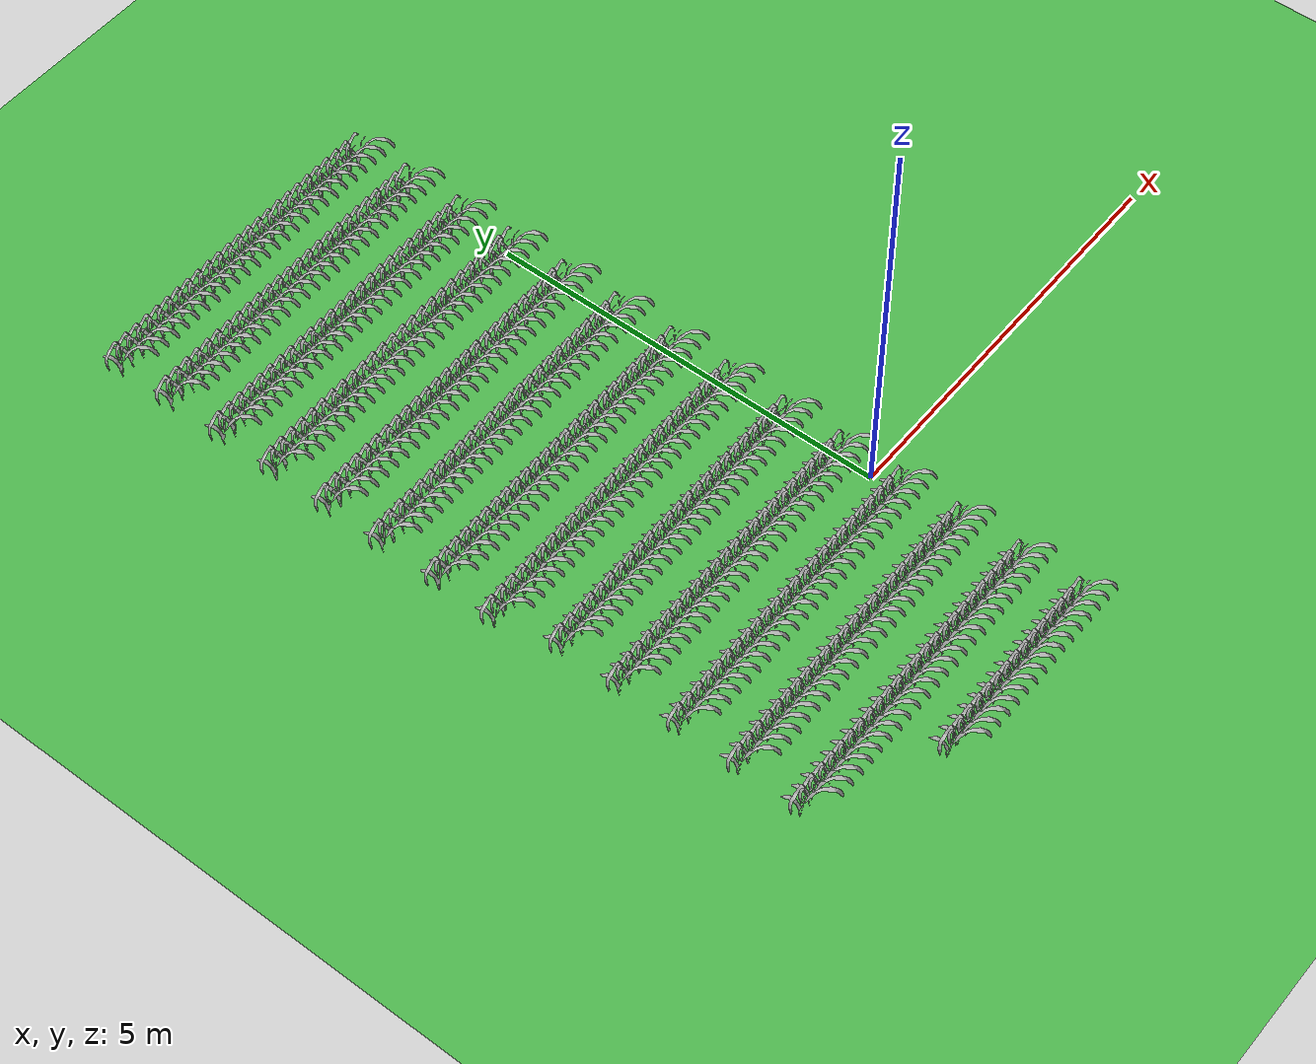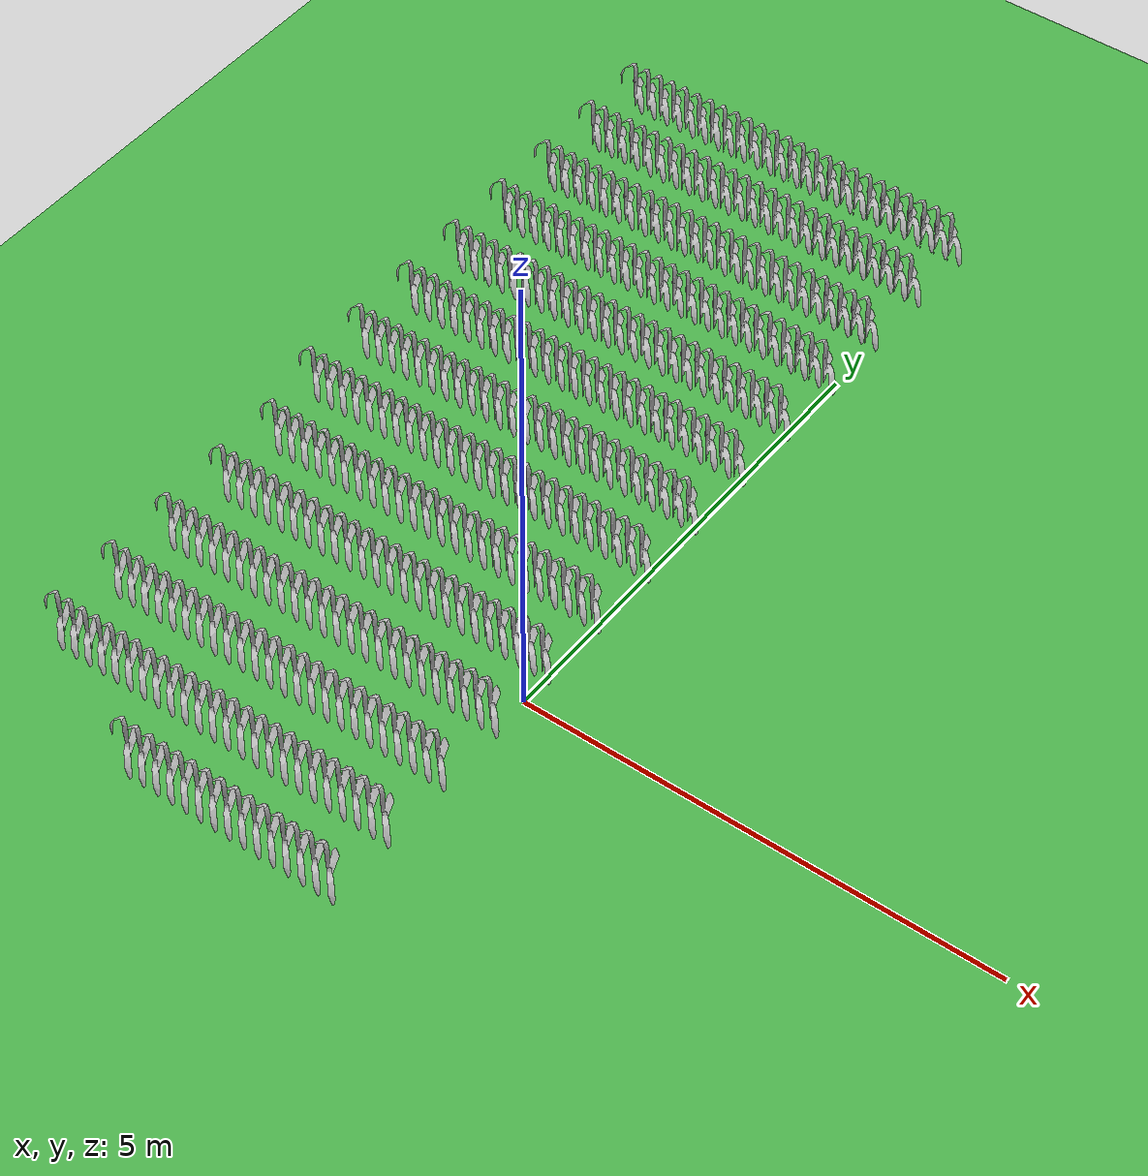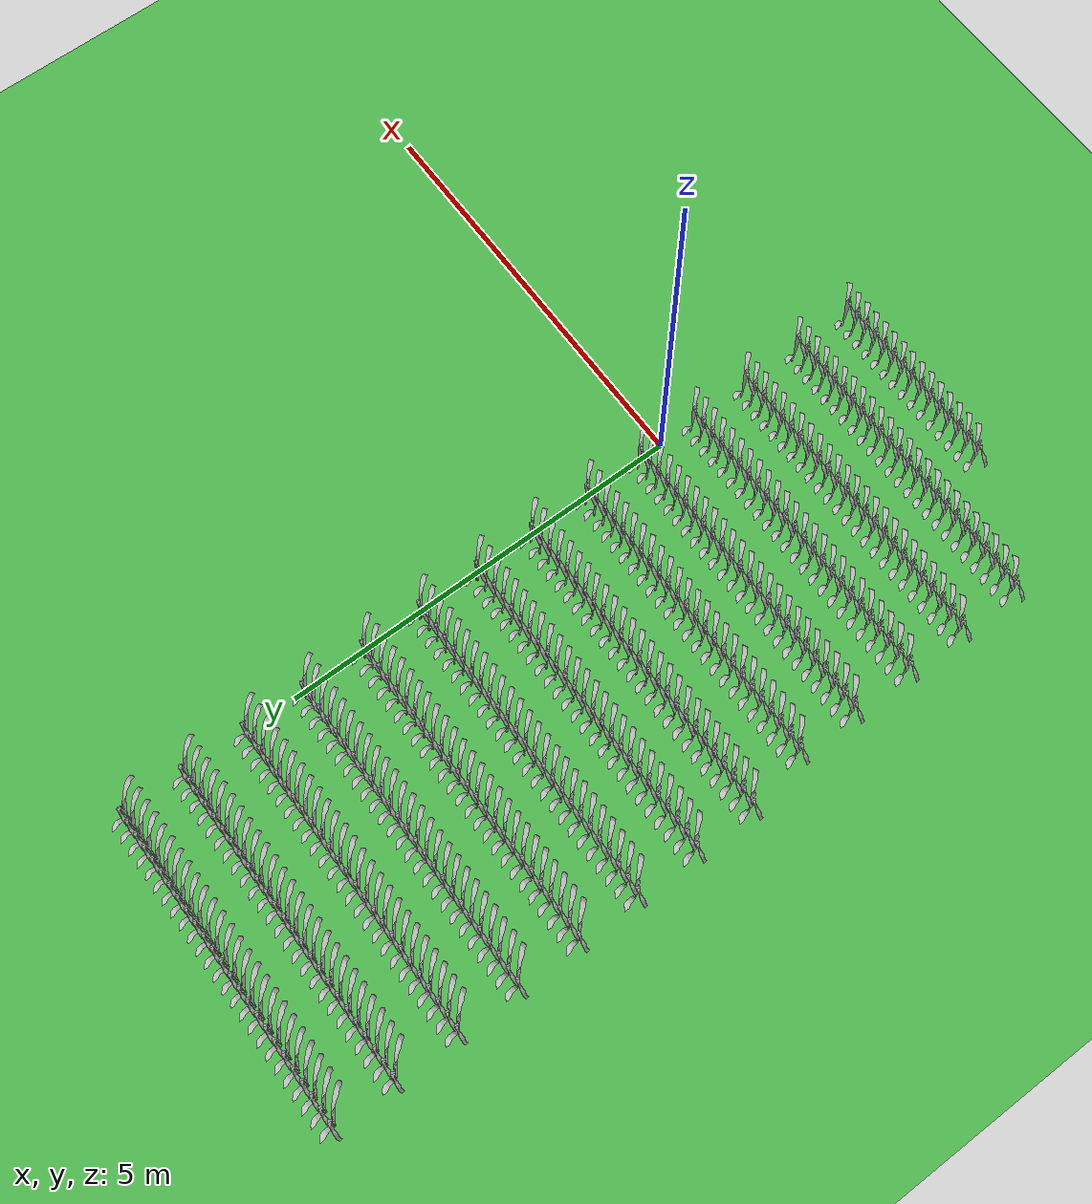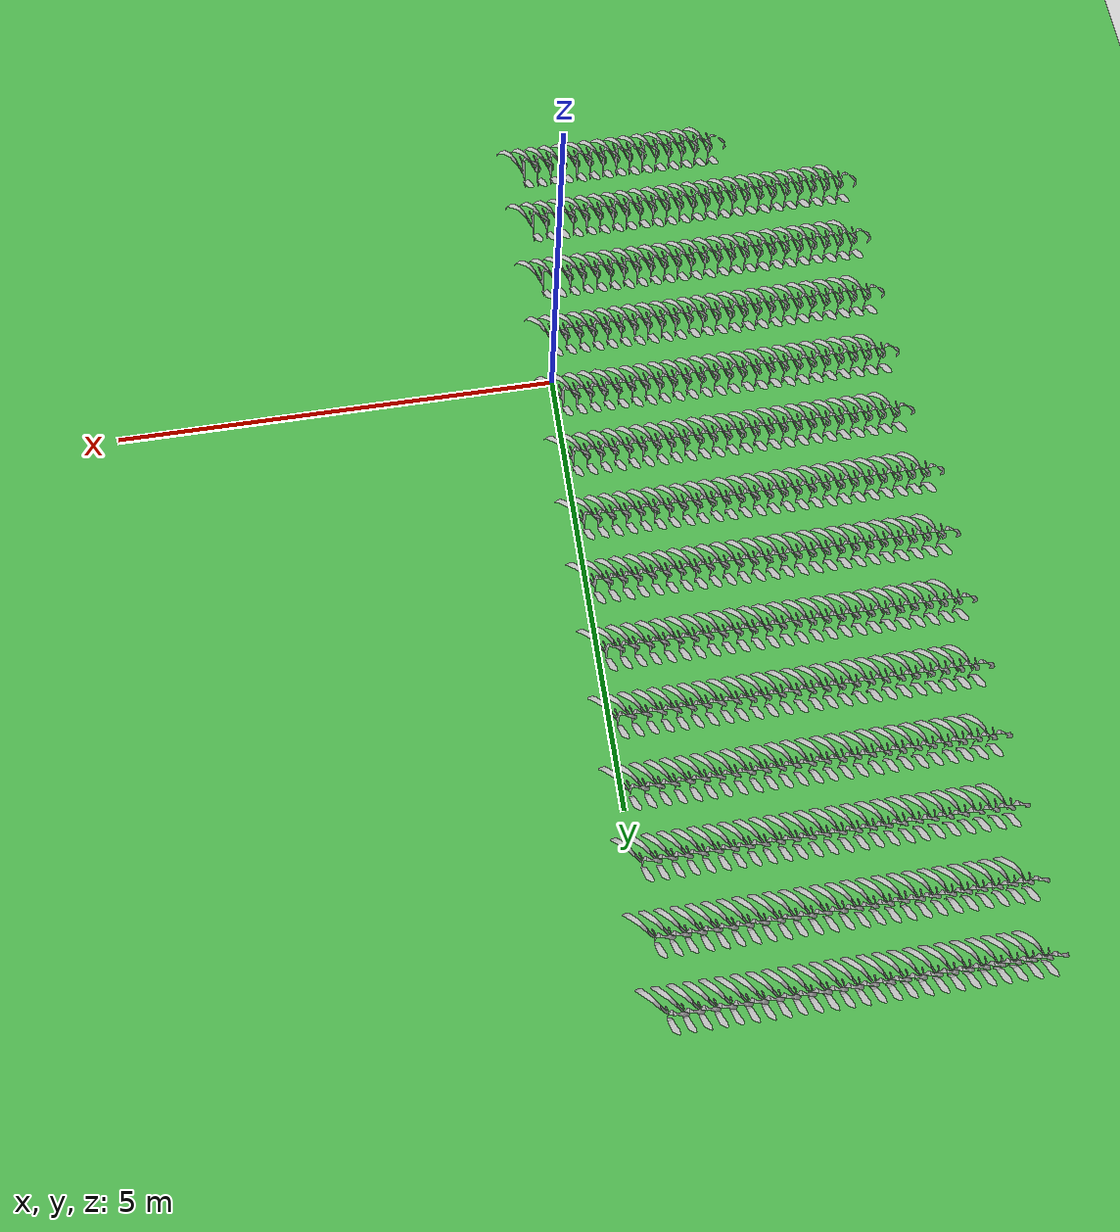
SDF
<sdf version="1.9">
 <world name="farm_world">
  <model name="ground_plane">
   <static>true</static>
   <link name="link">
    <collision name="collision">
     <geometry><plane><normal>0 0 1</normal><size>100 100</size></plane></geometry>
    </collision>
    <visual name="visual">
     <geometry><plane><normal>0 0 1</normal><size>100 100</size></plane></geometry>
     <material>
      <ambient>0.2 0.6 0.2 1</ambient>
      <diffuse>0.3 0.7 0.3 1</diffuse>
      <specular>0.1 0.1 0.1 1</specular>
     </material>
    </visual>
   </link>
  </model>
  <include><uri>model://maize_01</uri><name>maize_635</name><pose>-2.32 -2.62 0 0 0 0</pose></include>
  <include><uri>model://maize_01</uri><name>maize_636</name><pose>-2.16 -2.62 0 0 0 0</pose></include>
  <include><uri>model://maize_01</uri><name>maize_637</name><pose>-2.00 -2.62 0 0 0 0</pose></include>
  <include><uri>model://maize_01</uri><name>maize_638</name><pose>-1.84 -2.62 0 0 0 0</pose></include>
  <include><uri>model://maize_01</uri><name>maize_639</name><pose>-1.68 -2.62 0 0 0 0</pose></include>
  <include><uri>model://maize_01</uri><name>maize_640</name><pose>-1.52 -2.62 0 0 0 0</pose></include>
  <include><uri>model://maize_01</uri><name>maize_641</name><pose>-1.36 -2.62 0 0 0 0</pose></include>
  <include><uri>model://maize_01</uri><name>maize_642</name><pose>-1.20 -2.62 0 0 0 0</pose></include>
  <include><uri>model://maize_01</uri><name>maize_643</name><pose>-1.04 -2.62 0 0 0 0</pose></include>
  <include><uri>model://maize_01</uri><name>maize_644</name><pose>-0.88 -2.62 0 0 0 0</pose></include>
  <include><uri>model://maize_01</uri><name>maize_645</name><pose>-0.72 -2.62 0 0 0 0</pose></include>
  <include><uri>model://maize_01</uri><name>maize_646</name><pose>-0.56 -2.62 0 0 0 0</pose></include>
  <include><uri>model://maize_01</uri><name>maize_647</name><pose>-0.40 -2.62 0 0 0 0</pose></include>
  <include><uri>model://maize_01</uri><name>maize_648</name><pose>-0.24 -2.62 0 0 0 0</pose></include>
  <include><uri>model://maize_01</uri><name>maize_649</name><pose>-0.08 -2.62 0 0 0 0</pose></include>
  <include><uri>model://maize_01</uri><name>maize_726</name><pose>-3.76 -1.88 0 0 0 0</pose></include>
  <include><uri>model://maize_01</uri><name>maize_727</name><pose>-3.60 -1.88 0 0 0 0</pose></include>
  <include><uri>model://maize_01</uri><name>maize_728</name><pose>-3.44 -1.88 0 0 0 0</pose></include>
  <include><uri>model://maize_01</uri><name>maize_729</name><pose>-3.28 -1.88 0 0 0 0</pose></include>
  <include><uri>model://maize_01</uri><name>maize_730</name><pose>-3.12 -1.88 0 0 0 0</pose></include>
  <include><uri>model://maize_01</uri><name>maize_731</name><pose>-2.96 -1.88 0 0 0 0</pose></include>
  <include><uri>model://maize_01</uri><name>maize_732</name><pose>-2.80 -1.88 0 0 0 0</pose></include>
  <include><uri>model://maize_01</uri><name>maize_733</name><pose>-2.64 -1.88 0 0 0 0</pose></include>
  <include><uri>model://maize_01</uri><name>maize_734</name><pose>-2.48 -1.88 0 0 0 0</pose></include>
  <include><uri>model://maize_01</uri><name>maize_735</name><pose>-2.32 -1.88 0 0 0 0</pose></include>
  <include><uri>model://maize_01</uri><name>maize_736</name><pose>-2.16 -1.88 0 0 0 0</pose></include>
  <include><uri>model://maize_01</uri><name>maize_737</name><pose>-2.00 -1.88 0 0 0 0</pose></include>
  <include><uri>model://maize_01</uri><name>maize_738</name><pose>-1.84 -1.88 0 0 0 0</pose></include>
  <include><uri>model://maize_01</uri><name>maize_739</name><pose>-1.68 -1.88 0 0 0 0</pose></include>
  <include><uri>model://maize_01</uri><name>maize_740</name><pose>-1.52 -1.88 0 0 0 0</pose></include>
  <include><uri>model://maize_01</uri><name>maize_741</name><pose>-1.36 -1.88 0 0 0 0</pose></include>
  <include><uri>model://maize_01</uri><name>maize_742</name><pose>-1.20 -1.88 0 0 0 0</pose></include>
  <include><uri>model://maize_01</uri><name>maize_743</name><pose>-1.04 -1.88 0 0 0 0</pose></include>
  <include><uri>model://maize_01</uri><name>maize_744</name><pose>-0.88 -1.88 0 0 0 0</pose></include>
  <include><uri>model://maize_01</uri><name>maize_745</name><pose>-0.72 -1.88 0 0 0 0</pose></include>
  <include><uri>model://maize_01</uri><name>maize_746</name><pose>-0.56 -1.88 0 0 0 0</pose></include>
  <include><uri>model://maize_01</uri><name>maize_747</name><pose>-0.40 -1.88 0 0 0 0</pose></include>
  <include><uri>model://maize_01</uri><name>maize_748</name><pose>-0.24 -1.88 0 0 0 0</pose></include>
  <include><uri>model://maize_01</uri><name>maize_749</name><pose>-0.08 -1.88 0 0 0 0</pose></include>
  <include><uri>model://maize_01</uri><name>maize_826</name><pose>-3.76 -1.12 0 0 0 0</pose></include>
  <include><uri>model://maize_01</uri><name>maize_827</name><pose>-3.60 -1.12 0 0 0 0</pose></include>
  <include><uri>model://maize_01</uri><name>maize_828</name><pose>-3.44 -1.12 0 0 0 0</pose></include>
  <include><uri>model://maize_01</uri><name>maize_829</name><pose>-3.28 -1.12 0 0 0 0</pose></include>
  <include><uri>model://maize_01</uri><name>maize_830</name><pose>-3.12 -1.12 0 0 0 0</pose></include>
  <include><uri>model://maize_01</uri><name>maize_831</name><pose>-2.96 -1.12 0 0 0 0</pose></include>
  <include><uri>model://maize_01</uri><name>maize_832</name><pose>-2.80 -1.12 0 0 0 0</pose></include>
  <include><uri>model://maize_01</uri><name>maize_833</name><pose>-2.64 -1.12 0 0 0 0</pose></include>
  <include><uri>model://maize_01</uri><name>maize_834</name><pose>-2.48 -1.12 0 0 0 0</pose></include>
  <include><uri>model://maize_01</uri><name>maize_835</name><pose>-2.32 -1.12 0 0 0 0</pose></include>
  <include><uri>model://maize_01</uri><name>maize_836</name><pose>-2.16 -1.12 0 0 0 0</pose></include>
  <include><uri>model://maize_01</uri><name>maize_837</name><pose>-2.00 -1.12 0 0 0 0</pose></include>
  <include><uri>model://maize_01</uri><name>maize_838</name><pose>-1.84 -1.12 0 0 0 0</pose></include>
  <include><uri>model://maize_01</uri><name>maize_839</name><pose>-1.68 -1.12 0 0 0 0</pose></include>
  <include><uri>model://maize_01</uri><name>maize_840</name><pose>-1.52 -1.12 0 0 0 0</pose></include>
  <include><uri>model://maize_01</uri><name>maize_841</name><pose>-1.36 -1.12 0 0 0 0</pose></include>
  <include><uri>model://maize_01</uri><name>maize_842</name><pose>-1.20 -1.12 0 0 0 0</pose></include>
  <include><uri>model://maize_01</uri><name>maize_843</name><pose>-1.04 -1.12 0 0 0 0</pose></include>
  <include><uri>model://maize_01</uri><name>maize_844</name><pose>-0.88 -1.12 0 0 0 0</pose></include>
  <include><uri>model://maize_01</uri><name>maize_845</name><pose>-0.72 -1.12 0 0 0 0</pose></include>
  <include><uri>model://maize_01</uri><name>maize_846</name><pose>-0.56 -1.12 0 0 0 0</pose></include>
  <include><uri>model://maize_01</uri><name>maize_847</name><pose>-0.40 -1.12 0 0 0 0</pose></include>
  <include><uri>model://maize_01</uri><name>maize_848</name><pose>-0.24 -1.12 0 0 0 0</pose></include>
  <include><uri>model://maize_01</uri><name>maize_849</name><pose>-0.08 -1.12 0 0 0 0</pose></include>
  <include><uri>model://maize_01</uri><name>maize_926</name><pose>-3.76 -0.38 0 0 0 0</pose></include>
  <include><uri>model://maize_01</uri><name>maize_927</name><pose>-3.60 -0.38 0 0 0 0</pose></include>
  <include><uri>model://maize_01</uri><name>maize_928</name><pose>-3.44 -0.38 0 0 0 0</pose></include>
  <include><uri>model://maize_01</uri><name>maize_929</name><pose>-3.28 -0.38 0 0 0 0</pose></include>
  <include><uri>model://maize_01</uri><name>maize_930</name><pose>-3.12 -0.38 0 0 0 0</pose></include>
  <include><uri>model://maize_01</uri><name>maize_931</name><pose>-2.96 -0.38 0 0 0 0</pose></include>
  <include><uri>model://maize_01</uri><name>maize_932</name><pose>-2.80 -0.38 0 0 0 0</pose></include>
  <include><uri>model://maize_01</uri><name>maize_933</name><pose>-2.64 -0.38 0 0 0 0</pose></include>
  <include><uri>model://maize_01</uri><name>maize_934</name><pose>-2.48 -0.38 0 0 0 0</pose></include>
  <include><uri>model://maize_01</uri><name>maize_935</name><pose>-2.32 -0.38 0 0 0 0</pose></include>
  <include><uri>model://maize_01</uri><name>maize_936</name><pose>-2.16 -0.38 0 0 0 0</pose></include>
  <include><uri>model://maize_01</uri><name>maize_937</name><pose>-2.00 -0.38 0 0 0 0</pose></include>
  <include><uri>model://maize_01</uri><name>maize_938</name><pose>-1.84 -0.38 0 0 0 0</pose></include>
  <include><uri>model://maize_01</uri><name>maize_939</name><pose>-1.68 -0.38 0 0 0 0</pose></include>
  <include><uri>model://maize_01</uri><name>maize_940</name><pose>-1.52 -0.38 0 0 0 0</pose></include>
  <include><uri>model://maize_01</uri><name>maize_941</name><pose>-1.36 -0.38 0 0 0 0</pose></include>
  <include><uri>model://maize_01</uri><name>maize_942</name><pose>-1.20 -0.38 0 0 0 0</pose></include>
  <include><uri>model://maize_01</uri><name>maize_943</name><pose>-1.04 -0.38 0 0 0 0</pose></include>
  <include><uri>model://maize_01</uri><name>maize_944</name><pose>-0.88 -0.38 0 0 0 0</pose></include>
  <include><uri>model://maize_01</uri><name>maize_945</name><pose>-0.72 -0.38 0 0 0 0</pose></include>
  <include><uri>model://maize_01</uri><name>maize_946</name><pose>-0.56 -0.38 0 0 0 0</pose></include>
  <include><uri>model://maize_01</uri><name>maize_947</name><pose>-0.40 -0.38 0 0 0 0</pose></include>
  <include><uri>model://maize_01</uri><name>maize_948</name><pose>-0.24 -0.38 0 0 0 0</pose></include>
  <include><uri>model://maize_01</uri><name>maize_949</name><pose>-0.08 -0.38 0 0 0 0</pose></include>
  <include><uri>model://maize_01</uri><name>maize_1026</name><pose>-3.76 0.38 0 0 0 0</pose></include>
  <include><uri>model://maize_01</uri><name>maize_1027</name><pose>-3.60 0.38 0 0 0 0</pose></include>
  <include><uri>model://maize_01</uri><name>maize_1028</name><pose>-3.44 0.38 0 0 0 0</pose></include>
  <include><uri>model://maize_01</uri><name>maize_1029</name><pose>-3.28 0.38 0 0 0 0</pose></include>
  <include><uri>model://maize_01</uri><name>maize_1030</name><pose>-3.12 0.38 0 0 0 0</pose></include>
  <include><uri>model://maize_01</uri><name>maize_1031</name><pose>-2.96 0.38 0 0 0 0</pose></include>
  <include><uri>model://maize_01</uri><name>maize_1032</name><pose>-2.80 0.38 0 0 0 0</pose></include>
  <include><uri>model://maize_01</uri><name>maize_1033</name><pose>-2.64 0.38 0 0 0 0</pose></include>
  <include><uri>model://maize_01</uri><name>maize_1034</name><pose>-2.48 0.38 0 0 0 0</pose></include>
  <include><uri>model://maize_01</uri><name>maize_1035</name><pose>-2.32 0.38 0 0 0 0</pose></include>
  <include><uri>model://maize_01</uri><name>maize_1036</name><pose>-2.16 0.38 0 0 0 0</pose></include>
  <include><uri>model://maize_01</uri><name>maize_1037</name><pose>-2.00 0.38 0 0 0 0</pose></include>
  <include><uri>model://maize_01</uri><name>maize_1038</name><pose>-1.84 0.38 0 0 0 0</pose></include>
  <include><uri>model://maize_01</uri><name>maize_1039</name><pose>-1.68 0.38 0 0 0 0</pose></include>
  <include><uri>model://maize_01</uri><name>maize_1040</name><pose>-1.52 0.38 0 0 0 0</pose></include>
  <include><uri>model://maize_01</uri><name>maize_1041</name><pose>-1.36 0.38 0 0 0 0</pose></include>
  <include><uri>model://maize_01</uri><name>maize_1042</name><pose>-1.20 0.38 0 0 0 0</pose></include>
  <include><uri>model://maize_01</uri><name>maize_1043</name><pose>-1.04 0.38 0 0 0 0</pose></include>
  <include><uri>model://maize_01</uri><name>maize_1044</name><pose>-0.88 0.38 0 0 0 0</pose></include>
  <include><uri>model://maize_01</uri><name>maize_1045</name><pose>-0.72 0.38 0 0 0 0</pose></include>
  <include><uri>model://maize_01</uri><name>maize_1046</name><pose>-0.56 0.38 0 0 0 0</pose></include>
  <include><uri>model://maize_01</uri><name>maize_1047</name><pose>-0.40 0.38 0 0 0 0</pose></include>
  <include><uri>model://maize_01</uri><name>maize_1048</name><pose>-0.24 0.38 0 0 0 0</pose></include>
  <include><uri>model://maize_01</uri><name>maize_1049</name><pose>-0.08 0.38 0 0 0 0</pose></include>
  <include><uri>model://maize_01</uri><name>maize_1126</name><pose>-3.76 1.12 0 0 0 0</pose></include>
  <include><uri>model://maize_01</uri><name>maize_1127</name><pose>-3.60 1.12 0 0 0 0</pose></include>
  <include><uri>model://maize_01</uri><name>maize_1128</name><pose>-3.44 1.12 0 0 0 0</pose></include>
  <include><uri>model://maize_01</uri><name>maize_1129</name><pose>-3.28 1.12 0 0 0 0</pose></include>
  <include><uri>model://maize_01</uri><name>maize_1130</name><pose>-3.12 1.12 0 0 0 0</pose></include>
  <include><uri>model://maize_01</uri><name>maize_1131</name><pose>-2.96 1.12 0 0 0 0</pose></include>
  <include><uri>model://maize_01</uri><name>maize_1132</name><pose>-2.80 1.12 0 0 0 0</pose></include>
  <include><uri>model://maize_01</uri><name>maize_1133</name><pose>-2.64 1.12 0 0 0 0</pose></include>
  <include><uri>model://maize_01</uri><name>maize_1134</name><pose>-2.48 1.12 0 0 0 0</pose></include>
  <include><uri>model://maize_01</uri><name>maize_1135</name><pose>-2.32 1.12 0 0 0 0</pose></include>
  <include><uri>model://maize_01</uri><name>maize_1136</name><pose>-2.16 1.12 0 0 0 0</pose></include>
  <include><uri>model://maize_01</uri><name>maize_1137</name><pose>-2.00 1.12 0 0 0 0</pose></include>
  <include><uri>model://maize_01</uri><name>maize_1138</name><pose>-1.84 1.12 0 0 0 0</pose></include>
  <include><uri>model://maize_01</uri><name>maize_1139</name><pose>-1.68 1.12 0 0 0 0</pose></include>
  <include><uri>model://maize_01</uri><name>maize_1140</name><pose>-1.52 1.12 0 0 0 0</pose></include>
  <include><uri>model://maize_01</uri><name>maize_1141</name><pose>-1.36 1.12 0 0 0 0</pose></include>
  <include><uri>model://maize_01</uri><name>maize_1142</name><pose>-1.20 1.12 0 0 0 0</pose></include>
  <include><uri>model://maize_01</uri><name>maize_1143</name><pose>-1.04 1.12 0 0 0 0</pose></include>
  <include><uri>model://maize_01</uri><name>maize_1144</name><pose>-0.88 1.12 0 0 0 0</pose></include>
  <include><uri>model://maize_01</uri><name>maize_1145</name><pose>-0.72 1.12 0 0 0 0</pose></include>
  <include><uri>model://maize_01</uri><name>maize_1146</name><pose>-0.56 1.12 0 0 0 0</pose></include>
  <include><uri>model://maize_01</uri><name>maize_1147</name><pose>-0.40 1.12 0 0 0 0</pose></include>
  <include><uri>model://maize_01</uri><name>maize_1148</name><pose>-0.24 1.12 0 0 0 0</pose></include>
  <include><uri>model://maize_01</uri><name>maize_1149</name><pose>-0.08 1.12 0 0 0 0</pose></include>
  <include><uri>model://maize_01</uri><name>maize_1225</name><pose>-3.92 1.88 0 0 0 0</pose></include>
  <include><uri>model://maize_01</uri><name>maize_1226</name><pose>-3.76 1.88 0 0 0 0</pose></include>
  <include><uri>model://maize_01</uri><name>maize_1227</name><pose>-3.60 1.88 0 0 0 0</pose></include>
  <include><uri>model://maize_01</uri><name>maize_1228</name><pose>-3.44 1.88 0 0 0 0</pose></include>
  <include><uri>model://maize_01</uri><name>maize_1229</name><pose>-3.28 1.88 0 0 0 0</pose></include>
  <include><uri>model://maize_01</uri><name>maize_1230</name><pose>-3.12 1.88 0 0 0 0</pose></include>
  <include><uri>model://maize_01</uri><name>maize_1231</name><pose>-2.96 1.88 0 0 0 0</pose></include>
  <include><uri>model://maize_01</uri><name>maize_1232</name><pose>-2.80 1.88 0 0 0 0</pose></include>
  <include><uri>model://maize_01</uri><name>maize_1233</name><pose>-2.64 1.88 0 0 0 0</pose></include>
  <include><uri>model://maize_01</uri><name>maize_1234</name><pose>-2.48 1.88 0 0 0 0</pose></include>
  <include><uri>model://maize_01</uri><name>maize_1235</name><pose>-2.32 1.88 0 0 0 0</pose></include>
  <include><uri>model://maize_01</uri><name>maize_1236</name><pose>-2.16 1.88 0 0 0 0</pose></include>
  <include><uri>model://maize_01</uri><name>maize_1237</name><pose>-2.00 1.88 0 0 0 0</pose></include>
  <include><uri>model://maize_01</uri><name>maize_1238</name><pose>-1.84 1.88 0 0 0 0</pose></include>
  <include><uri>model://maize_01</uri><name>maize_1239</name><pose>-1.68 1.88 0 0 0 0</pose></include>
  <include><uri>model://maize_01</uri><name>maize_1240</name><pose>-1.52 1.88 0 0 0 0</pose></include>
  <include><uri>model://maize_01</uri><name>maize_1241</name><pose>-1.36 1.88 0 0 0 0</pose></include>
  <include><uri>model://maize_01</uri><name>maize_1242</name><pose>-1.20 1.88 0 0 0 0</pose></include>
  <include><uri>model://maize_01</uri><name>maize_1243</name><pose>-1.04 1.88 0 0 0 0</pose></include>
  <include><uri>model://maize_01</uri><name>maize_1244</name><pose>-0.88 1.88 0 0 0 0</pose></include>
  <include><uri>model://maize_01</uri><name>maize_1245</name><pose>-0.72 1.88 0 0 0 0</pose></include>
  <include><uri>model://maize_01</uri><name>maize_1246</name><pose>-0.56 1.88 0 0 0 0</pose></include>
  <include><uri>model://maize_01</uri><name>maize_1247</name><pose>-0.40 1.88 0 0 0 0</pose></include>
  <include><uri>model://maize_01</uri><name>maize_1248</name><pose>-0.24 1.88 0 0 0 0</pose></include>
  <include><uri>model://maize_01</uri><name>maize_1249</name><pose>-0.08 1.88 0 0 0 0</pose></include>
  <include><uri>model://maize_01</uri><name>maize_1325</name><pose>-3.92 2.62 0 0 0 0</pose></include>
  <include><uri>model://maize_01</uri><name>maize_1326</name><pose>-3.76 2.62 0 0 0 0</pose></include>
  <include><uri>model://maize_01</uri><name>maize_1327</name><pose>-3.60 2.62 0 0 0 0</pose></include>
  <include><uri>model://maize_01</uri><name>maize_1328</name><pose>-3.44 2.62 0 0 0 0</pose></include>
  <include><uri>model://maize_01</uri><name>maize_1329</name><pose>-3.28 2.62 0 0 0 0</pose></include>
  <include><uri>model://maize_01</uri><name>maize_1330</name><pose>-3.12 2.62 0 0 0 0</pose></include>
  <include><uri>model://maize_01</uri><name>maize_1331</name><pose>-2.96 2.62 0 0 0 0</pose></include>
  <include><uri>model://maize_01</uri><name>maize_1332</name><pose>-2.80 2.62 0 0 0 0</pose></include>
  <include><uri>model://maize_01</uri><name>maize_1333</name><pose>-2.64 2.62 0 0 0 0</pose></include>
  <include><uri>model://maize_01</uri><name>maize_1334</name><pose>-2.48 2.62 0 0 0 0</pose></include>
  <include><uri>model://maize_01</uri><name>maize_1335</name><pose>-2.32 2.62 0 0 0 0</pose></include>
  <include><uri>model://maize_01</uri><name>maize_1336</name><pose>-2.16 2.62 0 0 0 0</pose></include>
  <include><uri>model://maize_01</uri><name>maize_1337</name><pose>-2.00 2.62 0 0 0 0</pose></include>
  <include><uri>model://maize_01</uri><name>maize_1338</name><pose>-1.84 2.62 0 0 0 0</pose></include>
  <include><uri>model://maize_01</uri><name>maize_1339</name><pose>-1.68 2.62 0 0 0 0</pose></include>
  <include><uri>model://maize_01</uri><name>maize_1340</name><pose>-1.52 2.62 0 0 0 0</pose></include>
  <include><uri>model://maize_01</uri><name>maize_1341</name><pose>-1.36 2.62 0 0 0 0</pose></include>
  <include><uri>model://maize_01</uri><name>maize_1342</name><pose>-1.20 2.62 0 0 0 0</pose></include>
  <include><uri>model://maize_01</uri><name>maize_1343</name><pose>-1.04 2.62 0 0 0 0</pose></include>
  <include><uri>model://maize_01</uri><name>maize_1344</name><pose>-0.88 2.62 0 0 0 0</pose></include>
  <include><uri>model://maize_01</uri><name>maize_1345</name><pose>-0.72 2.62 0 0 0 0</pose></include>
  <include><uri>model://maize_01</uri><name>maize_1346</name><pose>-0.56 2.62 0 0 0 0</pose></include>
  <include><uri>model://maize_01</uri><name>maize_1347</name><pose>-0.40 2.62 0 0 0 0</pose></include>
  <include><uri>model://maize_01</uri><name>maize_1348</name><pose>-0.24 2.62 0 0 0 0</pose></include>
  <include><uri>model://maize_01</uri><name>maize_1349</name><pose>-0.08 2.62 0 0 0 0</pose></include>
  <include><uri>model://maize_01</uri><name>maize_1425</name><pose>-3.92 3.38 0 0 0 0</pose></include>
  <include><uri>model://maize_01</uri><name>maize_1426</name><pose>-3.76 3.38 0 0 0 0</pose></include>
  <include><uri>model://maize_01</uri><name>maize_1427</name><pose>-3.60 3.38 0 0 0 0</pose></include>
  <include><uri>model://maize_01</uri><name>maize_1428</name><pose>-3.44 3.38 0 0 0 0</pose></include>
  <include><uri>model://maize_01</uri><name>maize_1429</name><pose>-3.28 3.38 0 0 0 0</pose></include>
  <include><uri>model://maize_01</uri><name>maize_1430</name><pose>-3.12 3.38 0 0 0 0</pose></include>
  <include><uri>model://maize_01</uri><name>maize_1431</name><pose>-2.96 3.38 0 0 0 0</pose></include>
  <include><uri>model://maize_01</uri><name>maize_1432</name><pose>-2.80 3.38 0 0 0 0</pose></include>
  <include><uri>model://maize_01</uri><name>maize_1433</name><pose>-2.64 3.38 0 0 0 0</pose></include>
  <include><uri>model://maize_01</uri><name>maize_1434</name><pose>-2.48 3.38 0 0 0 0</pose></include>
  <include><uri>model://maize_01</uri><name>maize_1435</name><pose>-2.32 3.38 0 0 0 0</pose></include>
  <include><uri>model://maize_01</uri><name>maize_1436</name><pose>-2.16 3.38 0 0 0 0</pose></include>
  <include><uri>model://maize_01</uri><name>maize_1437</name><pose>-2.00 3.38 0 0 0 0</pose></include>
  <include><uri>model://maize_01</uri><name>maize_1438</name><pose>-1.84 3.38 0 0 0 0</pose></include>
  <include><uri>model://maize_01</uri><name>maize_1439</name><pose>-1.68 3.38 0 0 0 0</pose></include>
  <include><uri>model://maize_01</uri><name>maize_1440</name><pose>-1.52 3.38 0 0 0 0</pose></include>
  <include><uri>model://maize_01</uri><name>maize_1441</name><pose>-1.36 3.38 0 0 0 0</pose></include>
  <include><uri>model://maize_01</uri><name>maize_1442</name><pose>-1.20 3.38 0 0 0 0</pose></include>
  <include><uri>model://maize_01</uri><name>maize_1443</name><pose>-1.04 3.38 0 0 0 0</pose></include>
  <include><uri>model://maize_01</uri><name>maize_1444</name><pose>-0.88 3.38 0 0 0 0</pose></include>
  <include><uri>model://maize_01</uri><name>maize_1445</name><pose>-0.72 3.38 0 0 0 0</pose></include>
  <include><uri>model://maize_01</uri><name>maize_1446</name><pose>-0.56 3.38 0 0 0 0</pose></include>
  <include><uri>model://maize_01</uri><name>maize_1447</name><pose>-0.40 3.38 0 0 0 0</pose></include>
  <include><uri>model://maize_01</uri><name>maize_1448</name><pose>-0.24 3.38 0 0 0 0</pose></include>
  <include><uri>model://maize_01</uri><name>maize_1449</name><pose>-0.08 3.38 0 0 0 0</pose></include>
  <include><uri>model://maize_01</uri><name>maize_1525</name><pose>-3.92 4.12 0 0 0 0</pose></include>
  <include><uri>model://maize_01</uri><name>maize_1526</name><pose>-3.76 4.12 0 0 0 0</pose></include>
  <include><uri>model://maize_01</uri><name>maize_1527</name><pose>-3.60 4.12 0 0 0 0</pose></include>
  <include><uri>model://maize_01</uri><name>maize_1528</name><pose>-3.44 4.12 0 0 0 0</pose></include>
  <include><uri>model://maize_01</uri><name>maize_1529</name><pose>-3.28 4.12 0 0 0 0</pose></include>
  <include><uri>model://maize_01</uri><name>maize_1530</name><pose>-3.12 4.12 0 0 0 0</pose></include>
  <include><uri>model://maize_01</uri><name>maize_1531</name><pose>-2.96 4.12 0 0 0 0</pose></include>
  <include><uri>model://maize_01</uri><name>maize_1532</name><pose>-2.80 4.12 0 0 0 0</pose></include>
  <include><uri>model://maize_01</uri><name>maize_1533</name><pose>-2.64 4.12 0 0 0 0</pose></include>
  <include><uri>model://maize_01</uri><name>maize_1534</name><pose>-2.48 4.12 0 0 0 0</pose></include>
  <include><uri>model://maize_01</uri><name>maize_1535</name><pose>-2.32 4.12 0 0 0 0</pose></include>
  <include><uri>model://maize_01</uri><name>maize_1536</name><pose>-2.16 4.12 0 0 0 0</pose></include>
  <include><uri>model://maize_01</uri><name>maize_1537</name><pose>-2.00 4.12 0 0 0 0</pose></include>
  <include><uri>model://maize_01</uri><name>maize_1538</name><pose>-1.84 4.12 0 0 0 0</pose></include>
  <include><uri>model://maize_01</uri><name>maize_1539</name><pose>-1.68 4.12 0 0 0 0</pose></include>
  <include><uri>model://maize_01</uri><name>maize_1540</name><pose>-1.52 4.12 0 0 0 0</pose></include>
  <include><uri>model://maize_01</uri><name>maize_1541</name><pose>-1.36 4.12 0 0 0 0</pose></include>
  <include><uri>model://maize_01</uri><name>maize_1542</name><pose>-1.20 4.12 0 0 0 0</pose></include>
  <include><uri>model://maize_01</uri><name>maize_1543</name><pose>-1.04 4.12 0 0 0 0</pose></include>
  <include><uri>model://maize_01</uri><name>maize_1544</name><pose>-0.88 4.12 0 0 0 0</pose></include>
  <include><uri>model://maize_01</uri><name>maize_1545</name><pose>-0.72 4.12 0 0 0 0</pose></include>
  <include><uri>model://maize_01</uri><name>maize_1546</name><pose>-0.56 4.12 0 0 0 0</pose></include>
  <include><uri>model://maize_01</uri><name>maize_1547</name><pose>-0.40 4.12 0 0 0 0</pose></include>
  <include><uri>model://maize_01</uri><name>maize_1548</name><pose>-0.24 4.12 0 0 0 0</pose></include>
  <include><uri>model://maize_01</uri><name>maize_1549</name><pose>-0.08 4.12 0 0 0 0</pose></include>
  <include><uri>model://maize_01</uri><name>maize_1625</name><pose>-3.92 4.88 0 0 0 0</pose></include>
  <include><uri>model://maize_01</uri><name>maize_1626</name><pose>-3.76 4.88 0 0 0 0</pose></include>
  <include><uri>model://maize_01</uri><name>maize_1627</name><pose>-3.60 4.88 0 0 0 0</pose></include>
  <include><uri>model://maize_01</uri><name>maize_1628</name><pose>-3.44 4.88 0 0 0 0</pose></include>
  <include><uri>model://maize_01</uri><name>maize_1629</name><pose>-3.28 4.88 0 0 0 0</pose></include>
  <include><uri>model://maize_01</uri><name>maize_1630</name><pose>-3.12 4.88 0 0 0 0</pose></include>
  <include><uri>model://maize_01</uri><name>maize_1631</name><pose>-2.96 4.88 0 0 0 0</pose></include>
  <include><uri>model://maize_01</uri><name>maize_1632</name><pose>-2.80 4.88 0 0 0 0</pose></include>
  <include><uri>model://maize_01</uri><name>maize_1633</name><pose>-2.64 4.88 0 0 0 0</pose></include>
  <include><uri>model://maize_01</uri><name>maize_1634</name><pose>-2.48 4.88 0 0 0 0</pose></include>
  <include><uri>model://maize_01</uri><name>maize_1635</name><pose>-2.32 4.88 0 0 0 0</pose></include>
  <include><uri>model://maize_01</uri><name>maize_1636</name><pose>-2.16 4.88 0 0 0 0</pose></include>
  <include><uri>model://maize_01</uri><name>maize_1637</name><pose>-2.00 4.88 0 0 0 0</pose></include>
  <include><uri>model://maize_01</uri><name>maize_1638</name><pose>-1.84 4.88 0 0 0 0</pose></include>
  <include><uri>model://maize_01</uri><name>maize_1639</name><pose>-1.68 4.88 0 0 0 0</pose></include>
  <include><uri>model://maize_01</uri><name>maize_1640</name><pose>-1.52 4.88 0 0 0 0</pose></include>
  <include><uri>model://maize_01</uri><name>maize_1641</name><pose>-1.36 4.88 0 0 0 0</pose></include>
  <include><uri>model://maize_01</uri><name>maize_1642</name><pose>-1.20 4.88 0 0 0 0</pose></include>
  <include><uri>model://maize_01</uri><name>maize_1643</name><pose>-1.04 4.88 0 0 0 0</pose></include>
  <include><uri>model://maize_01</uri><name>maize_1644</name><pose>-0.88 4.88 0 0 0 0</pose></include>
  <include><uri>model://maize_01</uri><name>maize_1645</name><pose>-0.72 4.88 0 0 0 0</pose></include>
  <include><uri>model://maize_01</uri><name>maize_1646</name><pose>-0.56 4.88 0 0 0 0</pose></include>
  <include><uri>model://maize_01</uri><name>maize_1647</name><pose>-0.40 4.88 0 0 0 0</pose></include>
  <include><uri>model://maize_01</uri><name>maize_1648</name><pose>-0.24 4.88 0 0 0 0</pose></include>
  <include><uri>model://maize_01</uri><name>maize_1649</name><pose>-0.08 4.88 0 0 0 0</pose></include>
  <include><uri>model://maize_01</uri><name>maize_1725</name><pose>-3.92 5.62 0 0 0 0</pose></include>
  <include><uri>model://maize_01</uri><name>maize_1726</name><pose>-3.76 5.62 0 0 0 0</pose></include>
  <include><uri>model://maize_01</uri><name>maize_1727</name><pose>-3.60 5.62 0 0 0 0</pose></include>
  <include><uri>model://maize_01</uri><name>maize_1728</name><pose>-3.44 5.62 0 0 0 0</pose></include>
  <include><uri>model://maize_01</uri><name>maize_1729</name><pose>-3.28 5.62 0 0 0 0</pose></include>
  <include><uri>model://maize_01</uri><name>maize_1730</name><pose>-3.12 5.62 0 0 0 0</pose></include>
  <include><uri>model://maize_01</uri><name>maize_1731</name><pose>-2.96 5.62 0 0 0 0</pose></include>
  <include><uri>model://maize_01</uri><name>maize_1732</name><pose>-2.80 5.62 0 0 0 0</pose></include>
  <include><uri>model://maize_01</uri><name>maize_1733</name><pose>-2.64 5.62 0 0 0 0</pose></include>
  <include><uri>model://maize_01</uri><name>maize_1734</name><pose>-2.48 5.62 0 0 0 0</pose></include>
  <include><uri>model://maize_01</uri><name>maize_1735</name><pose>-2.32 5.62 0 0 0 0</pose></include>
  <include><uri>model://maize_01</uri><name>maize_1736</name><pose>-2.16 5.62 0 0 0 0</pose></include>
  <include><uri>model://maize_01</uri><name>maize_1737</name><pose>-2.00 5.62 0 0 0 0</pose></include>
  <include><uri>model://maize_01</uri><name>maize_1738</name><pose>-1.84 5.62 0 0 0 0</pose></include>
  <include><uri>model://maize_01</uri><name>maize_1739</name><pose>-1.68 5.62 0 0 0 0</pose></include>
  <include><uri>model://maize_01</uri><name>maize_1740</name><pose>-1.52 5.62 0 0 0 0</pose></include>
  <include><uri>model://maize_01</uri><name>maize_1741</name><pose>-1.36 5.62 0 0 0 0</pose></include>
  <include><uri>model://maize_01</uri><name>maize_1742</name><pose>-1.20 5.62 0 0 0 0</pose></include>
  <include><uri>model://maize_01</uri><name>maize_1743</name><pose>-1.04 5.62 0 0 0 0</pose></include>
  <include><uri>model://maize_01</uri><name>maize_1744</name><pose>-0.88 5.62 0 0 0 0</pose></include>
  <include><uri>model://maize_01</uri><name>maize_1745</name><pose>-0.72 5.62 0 0 0 0</pose></include>
  <include><uri>model://maize_01</uri><name>maize_1746</name><pose>-0.56 5.62 0 0 0 0</pose></include>
  <include><uri>model://maize_01</uri><name>maize_1747</name><pose>-0.40 5.62 0 0 0 0</pose></include>
  <include><uri>model://maize_01</uri><name>maize_1748</name><pose>-0.24 5.62 0 0 0 0</pose></include>
  <include><uri>model://maize_01</uri><name>maize_1749</name><pose>-0.08 5.62 0 0 0 0</pose></include>
  <include><uri>model://maize_01</uri><name>maize_1825</name><pose>-3.92 6.38 0 0 0 0</pose></include>
  <include><uri>model://maize_01</uri><name>maize_1826</name><pose>-3.76 6.38 0 0 0 0</pose></include>
  <include><uri>model://maize_01</uri><name>maize_1827</name><pose>-3.60 6.38 0 0 0 0</pose></include>
  <include><uri>model://maize_01</uri><name>maize_1828</name><pose>-3.44 6.38 0 0 0 0</pose></include>
  <include><uri>model://maize_01</uri><name>maize_1829</name><pose>-3.28 6.38 0 0 0 0</pose></include>
  <include><uri>model://maize_01</uri><name>maize_1830</name><pose>-3.12 6.38 0 0 0 0</pose></include>
  <include><uri>model://maize_01</uri><name>maize_1831</name><pose>-2.96 6.38 0 0 0 0</pose></include>
  <include><uri>model://maize_01</uri><name>maize_1832</name><pose>-2.80 6.38 0 0 0 0</pose></include>
  <include><uri>model://maize_01</uri><name>maize_1833</name><pose>-2.64 6.38 0 0 0 0</pose></include>
  <include><uri>model://maize_01</uri><name>maize_1834</name><pose>-2.48 6.38 0 0 0 0</pose></include>
  <include><uri>model://maize_01</uri><name>maize_1835</name><pose>-2.32 6.38 0 0 0 0</pose></include>
  <include><uri>model://maize_01</uri><name>maize_1836</name><pose>-2.16 6.38 0 0 0 0</pose></include>
  <include><uri>model://maize_01</uri><name>maize_1837</name><pose>-2.00 6.38 0 0 0 0</pose></include>
  <include><uri>model://maize_01</uri><name>maize_1838</name><pose>-1.84 6.38 0 0 0 0</pose></include>
  <include><uri>model://maize_01</uri><name>maize_1839</name><pose>-1.68 6.38 0 0 0 0</pose></include>
  <include><uri>model://maize_01</uri><name>maize_1840</name><pose>-1.52 6.38 0 0 0 0</pose></include>
  <include><uri>model://maize_01</uri><name>maize_1841</name><pose>-1.36 6.38 0 0 0 0</pose></include>
  <include><uri>model://maize_01</uri><name>maize_1842</name><pose>-1.20 6.38 0 0 0 0</pose></include>
  <include><uri>model://maize_01</uri><name>maize_1843</name><pose>-1.04 6.38 0 0 0 0</pose></include>
  <include><uri>model://maize_01</uri><name>maize_1844</name><pose>-0.88 6.38 0 0 0 0</pose></include>
  <include><uri>model://maize_01</uri><name>maize_1845</name><pose>-0.72 6.38 0 0 0 0</pose></include>
  <include><uri>model://maize_01</uri><name>maize_1846</name><pose>-0.56 6.38 0 0 0 0</pose></include>
  <include><uri>model://maize_01</uri><name>maize_1847</name><pose>-0.40 6.38 0 0 0 0</pose></include>
  <include><uri>model://maize_01</uri><name>maize_1848</name><pose>-0.24 6.38 0 0 0 0</pose></include>
  <include><uri>model://maize_01</uri><name>maize_1849</name><pose>-0.08 6.38 0 0 0 0</pose></include>
  <include><uri>model://maize_01</uri><name>maize_1925</name><pose>-3.92 7.12 0 0 0 0</pose></include>
  <include><uri>model://maize_01</uri><name>maize_1926</name><pose>-3.76 7.12 0 0 0 0</pose></include>
  <include><uri>model://maize_01</uri><name>maize_1927</name><pose>-3.60 7.12 0 0 0 0</pose></include>
  <include><uri>model://maize_01</uri><name>maize_1928</name><pose>-3.44 7.12 0 0 0 0</pose></include>
  <include><uri>model://maize_01</uri><name>maize_1929</name><pose>-3.28 7.12 0 0 0 0</pose></include>
  <include><uri>model://maize_01</uri><name>maize_1930</name><pose>-3.12 7.12 0 0 0 0</pose></include>
  <include><uri>model://maize_01</uri><name>maize_1931</name><pose>-2.96 7.12 0 0 0 0</pose></include>
  <include><uri>model://maize_01</uri><name>maize_1932</name><pose>-2.80 7.12 0 0 0 0</pose></include>
  <include><uri>model://maize_01</uri><name>maize_1933</name><pose>-2.64 7.12 0 0 0 0</pose></include>
  <include><uri>model://maize_01</uri><name>maize_1934</name><pose>-2.48 7.12 0 0 0 0</pose></include>
  <include><uri>model://maize_01</uri><name>maize_1935</name><pose>-2.32 7.12 0 0 0 0</pose></include>
  <include><uri>model://maize_01</uri><name>maize_1936</name><pose>-2.16 7.12 0 0 0 0</pose></include>
  <include><uri>model://maize_01</uri><name>maize_1937</name><pose>-2.00 7.12 0 0 0 0</pose></include>
  <include><uri>model://maize_01</uri><name>maize_1938</name><pose>-1.84 7.12 0 0 0 0</pose></include>
  <include><uri>model://maize_01</uri><name>maize_1939</name><pose>-1.68 7.12 0 0 0 0</pose></include>
  <include><uri>model://maize_01</uri><name>maize_1940</name><pose>-1.52 7.12 0 0 0 0</pose></include>
  <include><uri>model://maize_01</uri><name>maize_1941</name><pose>-1.36 7.12 0 0 0 0</pose></include>
  <include><uri>model://maize_01</uri><name>maize_1942</name><pose>-1.20 7.12 0 0 0 0</pose></include>
  <include><uri>model://maize_01</uri><name>maize_1943</name><pose>-1.04 7.12 0 0 0 0</pose></include>
  <include><uri>model://maize_01</uri><name>maize_1944</name><pose>-0.88 7.12 0 0 0 0</pose></include>
  <include><uri>model://maize_01</uri><name>maize_1945</name><pose>-0.72 7.12 0 0 0 0</pose></include>
  <include><uri>model://maize_01</uri><name>maize_1946</name><pose>-0.56 7.12 0 0 0 0</pose></include>
  <include><uri>model://maize_01</uri><name>maize_1947</name><pose>-0.40 7.12 0 0 0 0</pose></include>
  <include><uri>model://maize_01</uri><name>maize_1948</name><pose>-0.24 7.12 0 0 0 0</pose></include>
  <include><uri>model://maize_01</uri><name>maize_1949</name><pose>-0.08 7.12 0 0 0 0</pose></include>
 </world>
</sdf>
